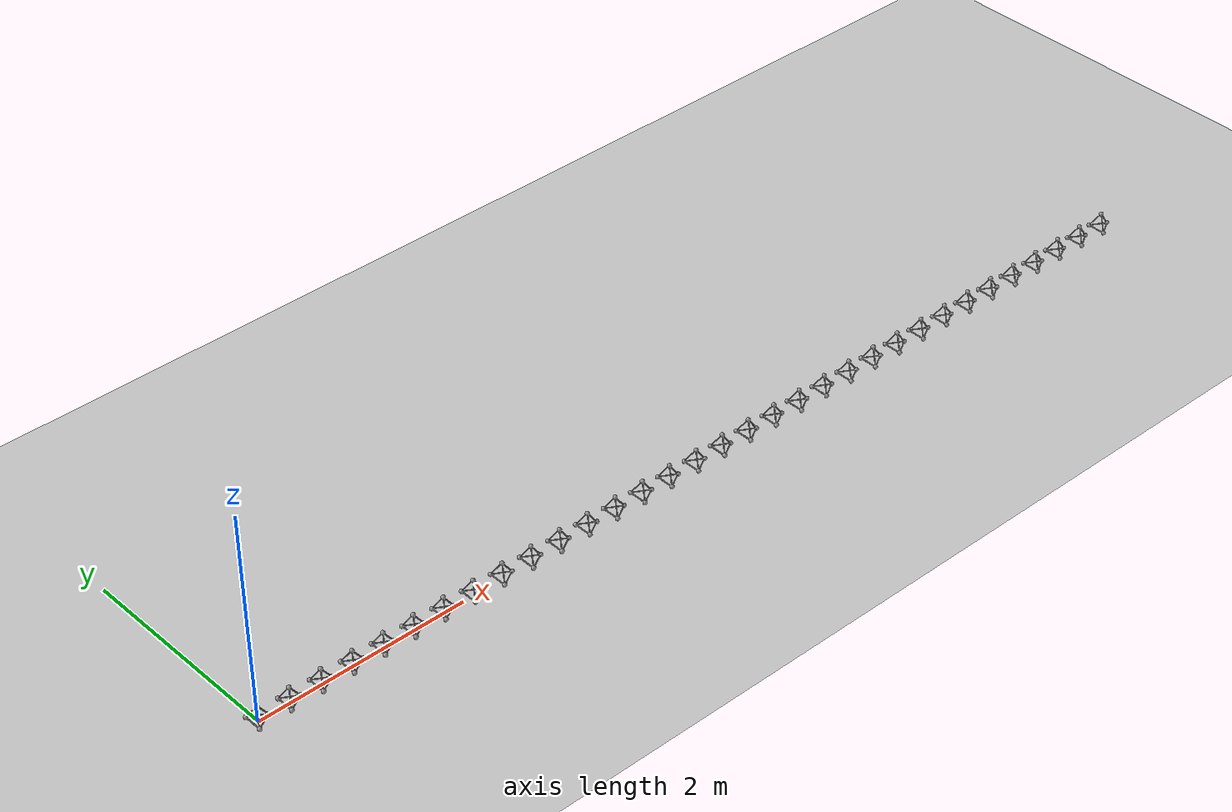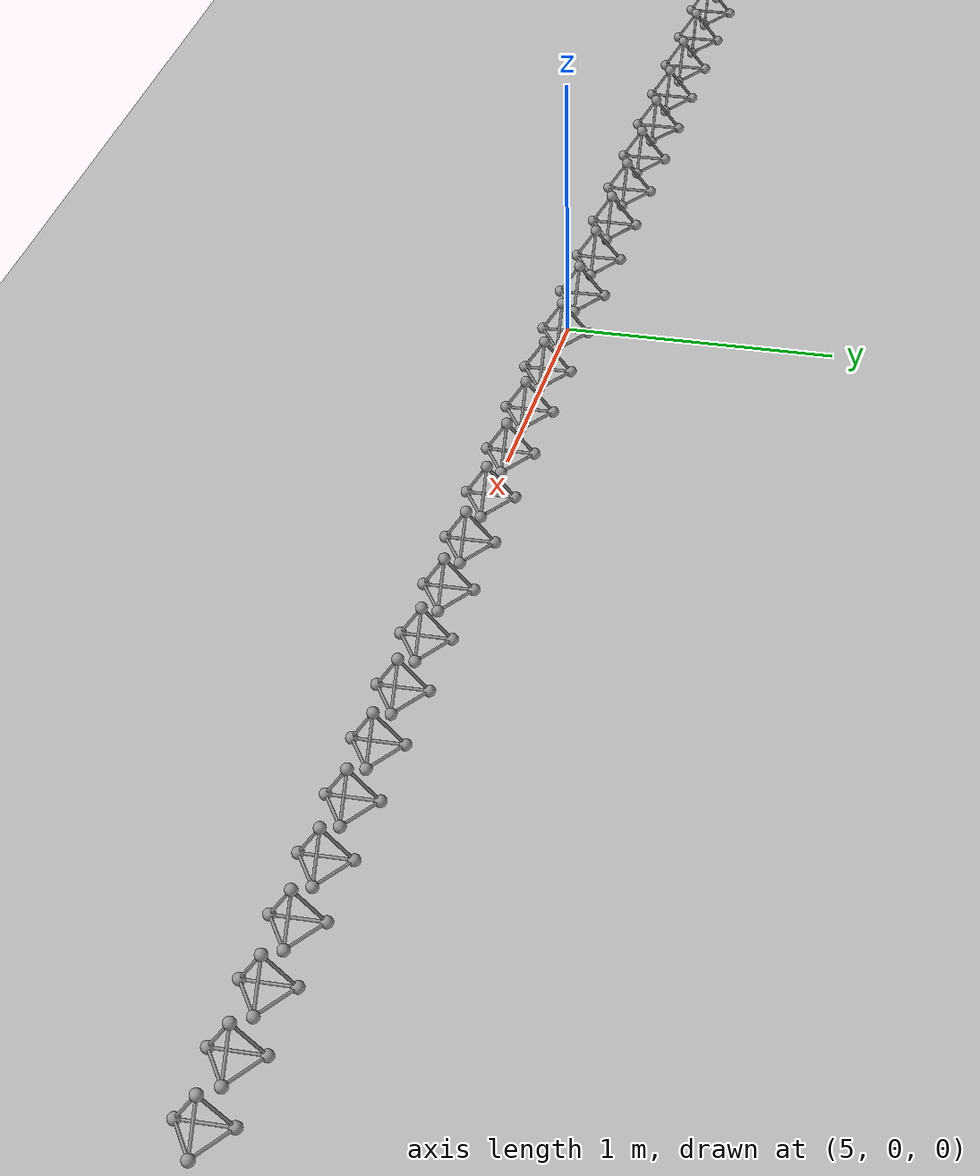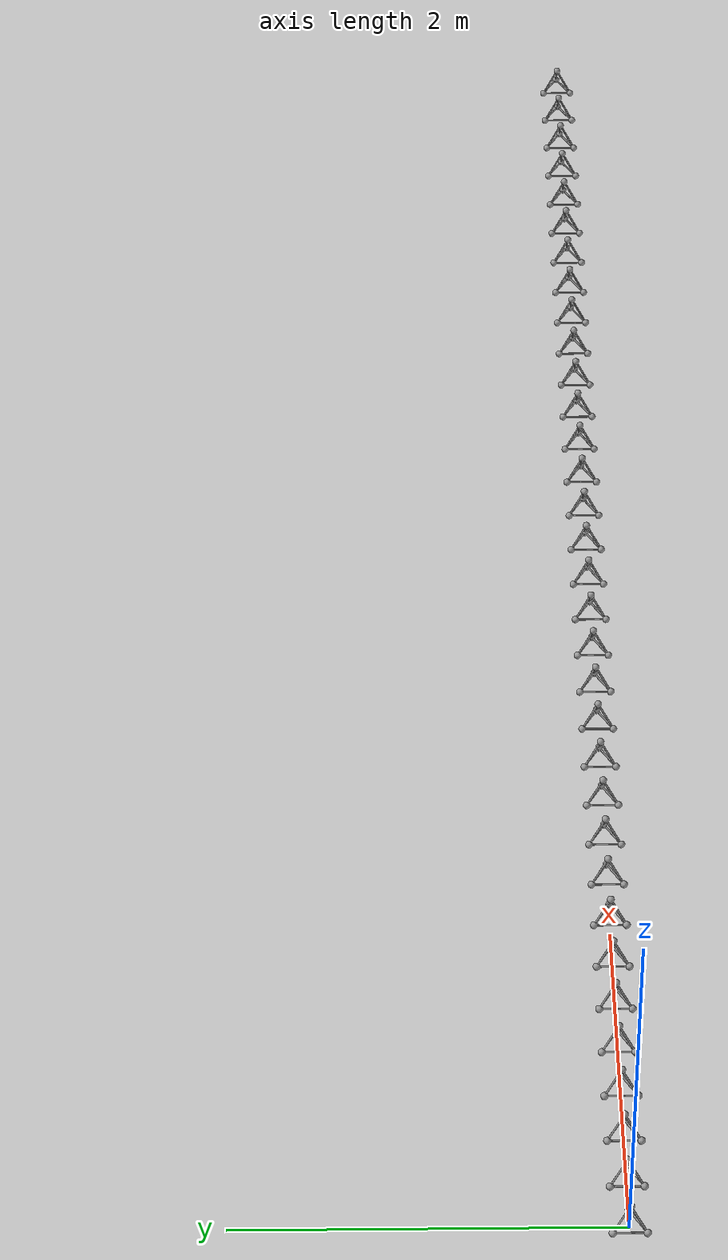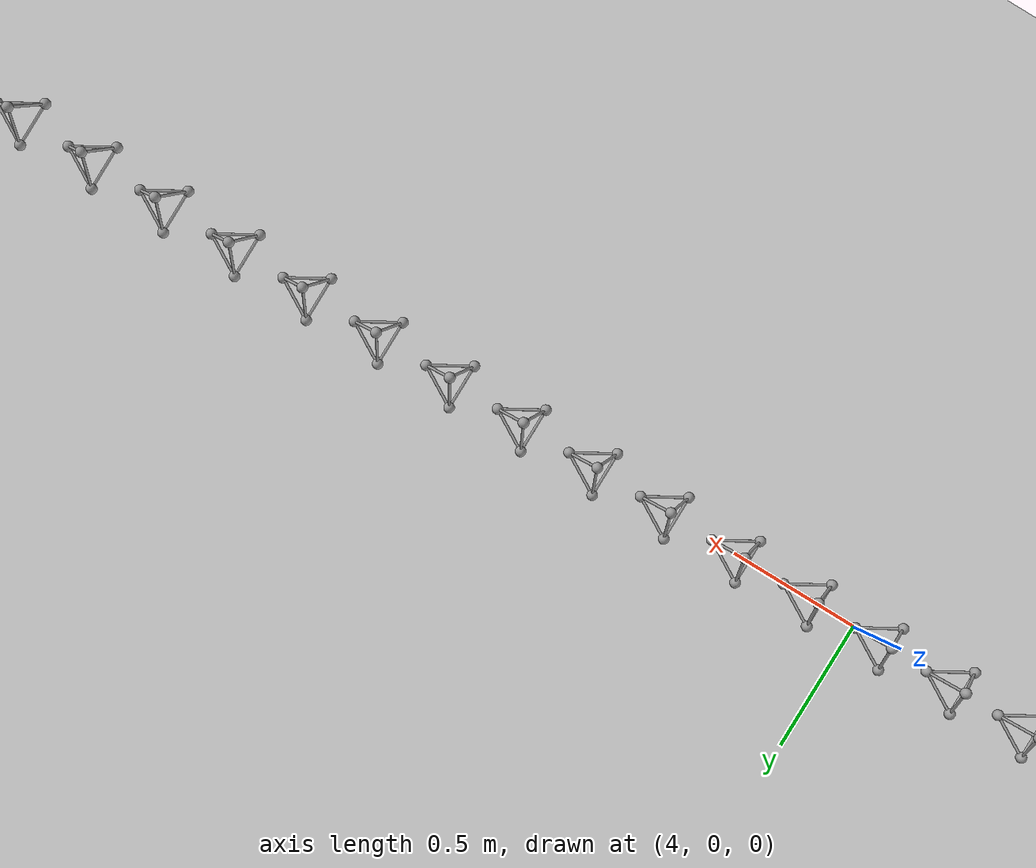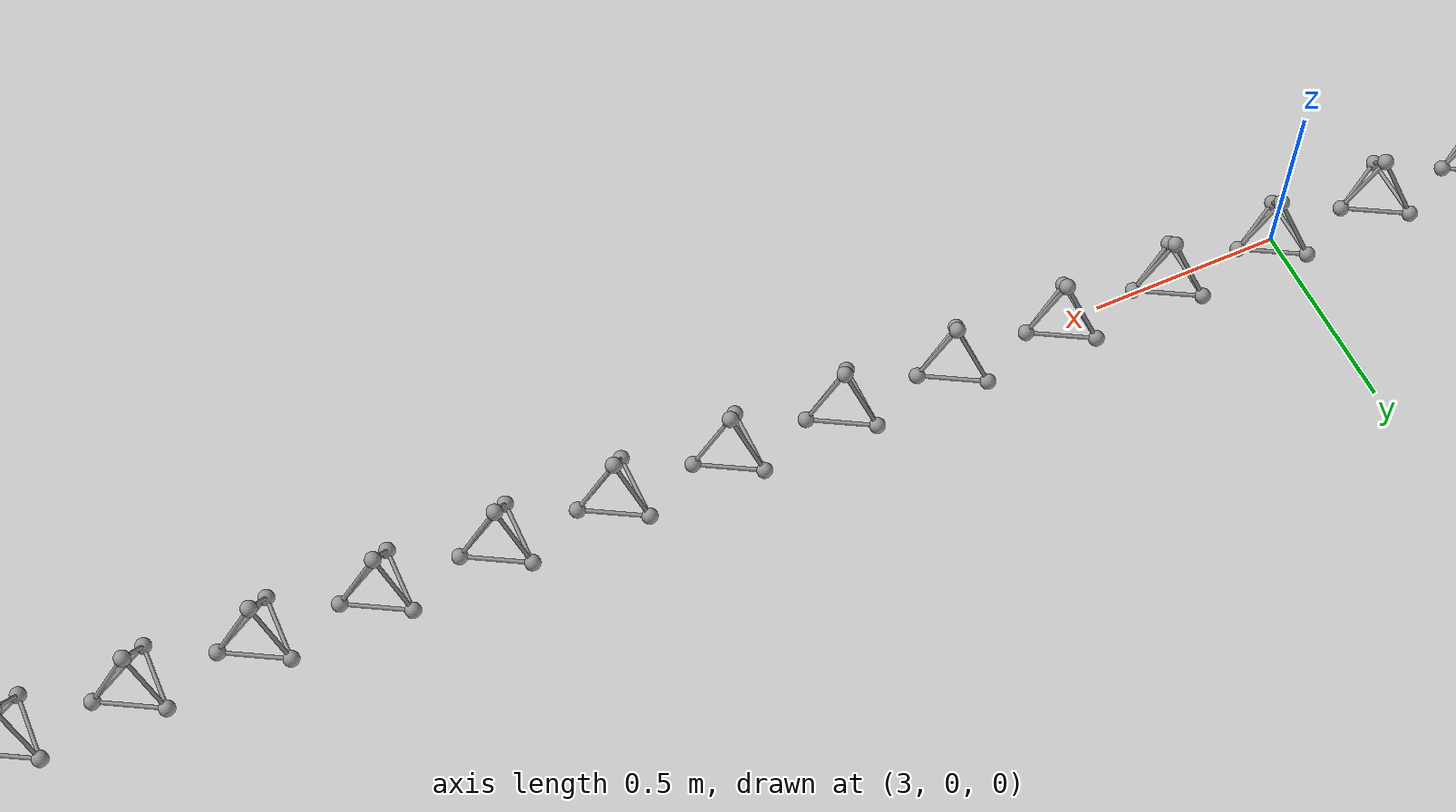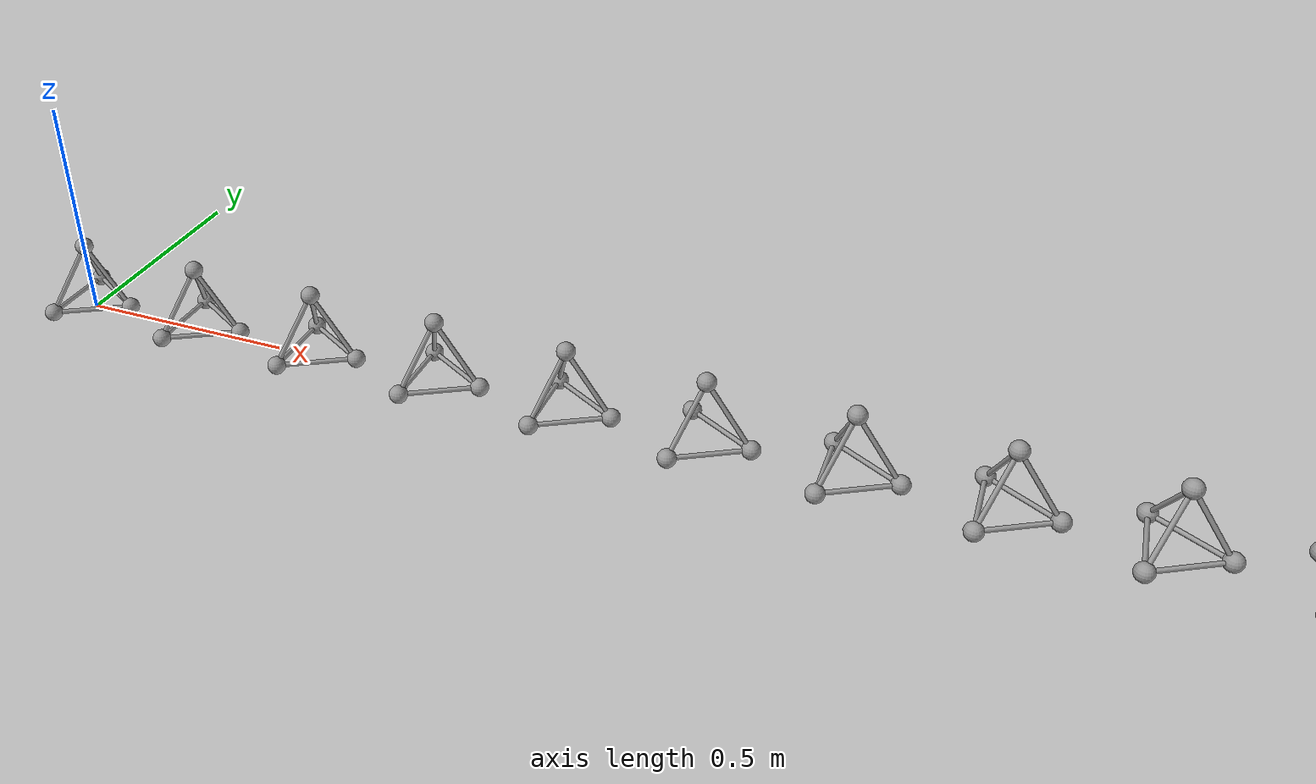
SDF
<?xml version="1.0" ?>

<sdf version="1.5">
  <world name="default">
    <include>
      <uri>model://ground_plane</uri>
    </include>
    <include>
      <uri>model://sun</uri>
    </include>

    <model name="tetraball_0">
      <include>
        <uri>model://tetraball</uri>
        <pose>0.0 0 0  0 0 0</pose>
      </include>
      <plugin name="tetraball_0" filename="libInitialVelocityPlugin.so">
        <linear>0 15 0</linear>
        <angular>0 0 -150.0</angular>
      </plugin>
    </model>

    <model name="tetraball_1">
      <include>
        <uri>model://tetraball</uri>
        <pose>0.3 0 0  0 0 0</pose>
      </include>
      <plugin name="tetraball_1" filename="libInitialVelocityPlugin.so">
        <linear>0 15 0</linear>
        <angular>0 0 -140.625</angular>
      </plugin>
    </model>

    <model name="tetraball_2">
      <include>
        <uri>model://tetraball</uri>
        <pose>0.6 0 0  0 0 0</pose>
      </include>
      <plugin name="tetraball_2" filename="libInitialVelocityPlugin.so">
        <linear>0 15 0</linear>
        <angular>0 0 -131.25</angular>
      </plugin>
    </model>

    <model name="tetraball_3">
      <include>
        <uri>model://tetraball</uri>
        <pose>0.8999999999999999 0 0  0 0 0</pose>
      </include>
      <plugin name="tetraball_3" filename="libInitialVelocityPlugin.so">
        <linear>0 15 0</linear>
        <angular>0 0 -121.875</angular>
      </plugin>
    </model>

    <model name="tetraball_4">
      <include>
        <uri>model://tetraball</uri>
        <pose>1.2 0 0  0 0 0</pose>
      </include>
      <plugin name="tetraball_4" filename="libInitialVelocityPlugin.so">
        <linear>0 15 0</linear>
        <angular>0 0 -112.5</angular>
      </plugin>
    </model>

    <model name="tetraball_5">
      <include>
        <uri>model://tetraball</uri>
        <pose>1.5 0 0  0 0 0</pose>
      </include>
      <plugin name="tetraball_5" filename="libInitialVelocityPlugin.so">
        <linear>0 15 0</linear>
        <angular>0 0 -103.125</angular>
      </plugin>
    </model>

    <model name="tetraball_6">
      <include>
        <uri>model://tetraball</uri>
        <pose>1.7999999999999998 0 0  0 0 0</pose>
      </include>
      <plugin name="tetraball_6" filename="libInitialVelocityPlugin.so">
        <linear>0 15 0</linear>
        <angular>0 0 -93.75</angular>
      </plugin>
    </model>

    <model name="tetraball_7">
      <include>
        <uri>model://tetraball</uri>
        <pose>2.1 0 0  0 0 0</pose>
      </include>
      <plugin name="tetraball_7" filename="libInitialVelocityPlugin.so">
        <linear>0 15 0</linear>
        <angular>0 0 -84.375</angular>
      </plugin>
    </model>

    <model name="tetraball_8">
      <include>
        <uri>model://tetraball</uri>
        <pose>2.4 0 0  0 0 0</pose>
      </include>
      <plugin name="tetraball_8" filename="libInitialVelocityPlugin.so">
        <linear>0 15 0</linear>
        <angular>0 0 -75.0</angular>
      </plugin>
    </model>

    <model name="tetraball_9">
      <include>
        <uri>model://tetraball</uri>
        <pose>2.6999999999999997 0 0  0 0 0</pose>
      </include>
      <plugin name="tetraball_9" filename="libInitialVelocityPlugin.so">
        <linear>0 15 0</linear>
        <angular>0 0 -65.625</angular>
      </plugin>
    </model>

    <model name="tetraball_10">
      <include>
        <uri>model://tetraball</uri>
        <pose>3.0 0 0  0 0 0</pose>
      </include>
      <plugin name="tetraball_10" filename="libInitialVelocityPlugin.so">
        <linear>0 15 0</linear>
        <angular>0 0 -56.25</angular>
      </plugin>
    </model>

    <model name="tetraball_11">
      <include>
        <uri>model://tetraball</uri>
        <pose>3.3 0 0  0 0 0</pose>
      </include>
      <plugin name="tetraball_11" filename="libInitialVelocityPlugin.so">
        <linear>0 15 0</linear>
        <angular>0 0 -46.875</angular>
      </plugin>
    </model>

    <model name="tetraball_12">
      <include>
        <uri>model://tetraball</uri>
        <pose>3.5999999999999996 0 0  0 0 0</pose>
      </include>
      <plugin name="tetraball_12" filename="libInitialVelocityPlugin.so">
        <linear>0 15 0</linear>
        <angular>0 0 -37.5</angular>
      </plugin>
    </model>

    <model name="tetraball_13">
      <include>
        <uri>model://tetraball</uri>
        <pose>3.9 0 0  0 0 0</pose>
      </include>
      <plugin name="tetraball_13" filename="libInitialVelocityPlugin.so">
        <linear>0 15 0</linear>
        <angular>0 0 -28.125</angular>
      </plugin>
    </model>

    <model name="tetraball_14">
      <include>
        <uri>model://tetraball</uri>
        <pose>4.2 0 0  0 0 0</pose>
      </include>
      <plugin name="tetraball_14" filename="libInitialVelocityPlugin.so">
        <linear>0 15 0</linear>
        <angular>0 0 -18.75</angular>
      </plugin>
    </model>

    <model name="tetraball_15">
      <include>
        <uri>model://tetraball</uri>
        <pose>4.5 0 0  0 0 0</pose>
      </include>
      <plugin name="tetraball_15" filename="libInitialVelocityPlugin.so">
        <linear>0 15 0</linear>
        <angular>0 0 -9.375</angular>
      </plugin>
    </model>

    <model name="tetraball_16">
      <include>
        <uri>model://tetraball</uri>
        <pose>4.8 0 0  0 0 0</pose>
      </include>
      <plugin name="tetraball_16" filename="libInitialVelocityPlugin.so">
        <linear>0 15 0</linear>
        <angular>0 0 0.0</angular>
      </plugin>
    </model>

    <model name="tetraball_17">
      <include>
        <uri>model://tetraball</uri>
        <pose>5.1 0 0  0 0 0</pose>
      </include>
      <plugin name="tetraball_17" filename="libInitialVelocityPlugin.so">
        <linear>0 15 0</linear>
        <angular>0 0 9.375</angular>
      </plugin>
    </model>

    <model name="tetraball_18">
      <include>
        <uri>model://tetraball</uri>
        <pose>5.3999999999999995 0 0  0 0 0</pose>
      </include>
      <plugin name="tetraball_18" filename="libInitialVelocityPlugin.so">
        <linear>0 15 0</linear>
        <angular>0 0 18.75</angular>
      </plugin>
    </model>

    <model name="tetraball_19">
      <include>
        <uri>model://tetraball</uri>
        <pose>5.7 0 0  0 0 0</pose>
      </include>
      <plugin name="tetraball_19" filename="libInitialVelocityPlugin.so">
        <linear>0 15 0</linear>
        <angular>0 0 28.125</angular>
      </plugin>
    </model>

    <model name="tetraball_20">
      <include>
        <uri>model://tetraball</uri>
        <pose>6.0 0 0  0 0 0</pose>
      </include>
      <plugin name="tetraball_20" filename="libInitialVelocityPlugin.so">
        <linear>0 15 0</linear>
        <angular>0 0 37.5</angular>
      </plugin>
    </model>

    <model name="tetraball_21">
      <include>
        <uri>model://tetraball</uri>
        <pose>6.3 0 0  0 0 0</pose>
      </include>
      <plugin name="tetraball_21" filename="libInitialVelocityPlugin.so">
        <linear>0 15 0</linear>
        <angular>0 0 46.875</angular>
      </plugin>
    </model>

    <model name="tetraball_22">
      <include>
        <uri>model://tetraball</uri>
        <pose>6.6 0 0  0 0 0</pose>
      </include>
      <plugin name="tetraball_22" filename="libInitialVelocityPlugin.so">
        <linear>0 15 0</linear>
        <angular>0 0 56.25</angular>
      </plugin>
    </model>

    <model name="tetraball_23">
      <include>
        <uri>model://tetraball</uri>
        <pose>6.8999999999999995 0 0  0 0 0</pose>
      </include>
      <plugin name="tetraball_23" filename="libInitialVelocityPlugin.so">
        <linear>0 15 0</linear>
        <angular>0 0 65.625</angular>
      </plugin>
    </model>

    <model name="tetraball_24">
      <include>
        <uri>model://tetraball</uri>
        <pose>7.199999999999999 0 0  0 0 0</pose>
      </include>
      <plugin name="tetraball_24" filename="libInitialVelocityPlugin.so">
        <linear>0 15 0</linear>
        <angular>0 0 75.0</angular>
      </plugin>
    </model>

    <model name="tetraball_25">
      <include>
        <uri>model://tetraball</uri>
        <pose>7.5 0 0  0 0 0</pose>
      </include>
      <plugin name="tetraball_25" filename="libInitialVelocityPlugin.so">
        <linear>0 15 0</linear>
        <angular>0 0 84.375</angular>
      </plugin>
    </model>

    <model name="tetraball_26">
      <include>
        <uri>model://tetraball</uri>
        <pose>7.8 0 0  0 0 0</pose>
      </include>
      <plugin name="tetraball_26" filename="libInitialVelocityPlugin.so">
        <linear>0 15 0</linear>
        <angular>0 0 93.75</angular>
      </plugin>
    </model>

    <model name="tetraball_27">
      <include>
        <uri>model://tetraball</uri>
        <pose>8.1 0 0  0 0 0</pose>
      </include>
      <plugin name="tetraball_27" filename="libInitialVelocityPlugin.so">
        <linear>0 15 0</linear>
        <angular>0 0 103.125</angular>
      </plugin>
    </model>

    <model name="tetraball_28">
      <include>
        <uri>model://tetraball</uri>
        <pose>8.4 0 0  0 0 0</pose>
      </include>
      <plugin name="tetraball_28" filename="libInitialVelocityPlugin.so">
        <linear>0 15 0</linear>
        <angular>0 0 112.5</angular>
      </plugin>
    </model>

    <model name="tetraball_29">
      <include>
        <uri>model://tetraball</uri>
        <pose>8.7 0 0  0 0 0</pose>
      </include>
      <plugin name="tetraball_29" filename="libInitialVelocityPlugin.so">
        <linear>0 15 0</linear>
        <angular>0 0 121.875</angular>
      </plugin>
    </model>

    <model name="tetraball_30">
      <include>
        <uri>model://tetraball</uri>
        <pose>9.0 0 0  0 0 0</pose>
      </include>
      <plugin name="tetraball_30" filename="libInitialVelocityPlugin.so">
        <linear>0 15 0</linear>
        <angular>0 0 131.25</angular>
      </plugin>
    </model>

    <model name="tetraball_31">
      <include>
        <uri>model://tetraball</uri>
        <pose>9.299999999999999 0 0  0 0 0</pose>
      </include>
      <plugin name="tetraball_31" filename="libInitialVelocityPlugin.so">
        <linear>0 15 0</linear>
        <angular>0 0 140.625</angular>
      </plugin>
    </model>

    <model name="tetraball_32">
      <include>
        <uri>model://tetraball</uri>
        <pose>9.6 0 0  0 0 0</pose>
      </include>
      <plugin name="tetraball_32" filename="libInitialVelocityPlugin.so">
        <linear>0 15 0</linear>
        <angular>0 0 150.0</angular>
      </plugin>
    </model>

    <gui fullscreen='0'>
      <camera name='user_camera'>
        <pose>8.5 5.5 0.3  0 0 3.14159</pose>
        <view_controller>orbit</view_controller>
      </camera>
    </gui>
  </world>
</sdf>

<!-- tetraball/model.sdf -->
<sdf version="1.5">
  <model name="tetraball">
    <link name="link">
      <pose>0 0 0.02  0 0 0</pose>
      <inertial>
        <pose>0.0 0.0 0.03535533905932737  0 0 0</pose>
        <mass>0.08042477193189872</mass>
        <inertia>
          <ixx>0.0006160537529983441</ixx>
          <iyy>0.000616053752998344</iyy>
          <izz>0.0006160537529983441</izz>
          <ixy>0.0</ixy>
          <ixz>0.0</ixz>
          <iyz>0.0</iyz>
        </inertia>
      </inertial>

      <collision name="collision_a">
        <pose>0.09999999999999999 0 0  0 0 0</pose>
        <geometry>
          <sphere>
            <radius>0.02</radius>
          </sphere>
        </geometry>
        <surface>
          <friction>
            <ode>
              <mu>0.9</mu>
              <mu2>0.9</mu2>
            </ode>
          </friction>
        </surface>
      </collision>
      <visual name="visual_a">
        <pose>0.09999999999999999 0 0  0 0 0</pose>
        <geometry>
          <sphere>
            <radius>0.02</radius>
          </sphere>
        </geometry>
        <material>
          <script>
            <uri>file://media/materials/scripts/gazebo.material</uri>
            <name>Gazebo/Grey</name>
          </script>
        </material>
      </visual>

      <collision name="collision_a_to_b">
        <pose>0.024999999999999998 0.04330127018922193 0.0  -1.5707962969925737 -1.0471975511965974 1.047197525387029</pose>
        <geometry>
          <cylinder>
            <radius>0.005</radius>
            <length>0.17320508075688773</length>
          </cylinder>
        </geometry>
        <surface>
          <friction>
            <ode>
              <mu>0.9</mu>
              <mu2>0.9</mu2>
            </ode>
          </friction>
        </surface>
      </collision>
      <visual name="visual_a_to_b">
        <pose>0.024999999999999998 0.04330127018922193 0.0  -1.5707962969925737 -1.0471975511965974 1.047197525387029</pose>
        <geometry>
          <cylinder>
            <radius>0.005</radius>
            <length>0.17320508075688773</length>
          </cylinder>
        </geometry>
        <material>
          <script>
            <uri>file://media/materials/scripts/gazebo.material</uri>
            <name>Gazebo/Grey</name>
          </script>
        </material>
      </visual>

      <collision name="collision_a_to_c">
        <pose>0.024999999999999998 -0.04330127018922193 0.0  1.5707962969925737 -1.0471975511965974 -1.047197525387029</pose>
        <geometry>
          <cylinder>
            <radius>0.005</radius>
            <length>0.17320508075688773</length>
          </cylinder>
        </geometry>
        <surface>
          <friction>
            <ode>
              <mu>0.9</mu>
              <mu2>0.9</mu2>
            </ode>
          </friction>
        </surface>
      </collision>
      <visual name="visual_a_to_c">
        <pose>0.024999999999999998 -0.04330127018922193 0.0  1.5707962969925737 -1.0471975511965974 -1.047197525387029</pose>
        <geometry>
          <cylinder>
            <radius>0.005</radius>
            <length>0.17320508075688773</length>
          </cylinder>
        </geometry>
        <material>
          <script>
            <uri>file://media/materials/scripts/gazebo.material</uri>
            <name>Gazebo/Grey</name>
          </script>
        </material>
      </visual>

      <collision name="collision_a_to_d">
        <pose>0.049999999999999996 0.0 0.07071067811865474  0.0 -0.6154797086703877 0.0</pose>
        <geometry>
          <cylinder>
            <radius>0.005</radius>
            <length>0.1732050807568877</length>
          </cylinder>
        </geometry>
        <surface>
          <friction>
            <ode>
              <mu>0.9</mu>
              <mu2>0.9</mu2>
            </ode>
          </friction>
        </surface>
      </collision>
      <visual name="visual_a_to_d">
        <pose>0.049999999999999996 0.0 0.07071067811865474  0.0 -0.6154797086703877 0.0</pose>
        <geometry>
          <cylinder>
            <radius>0.005</radius>
            <length>0.1732050807568877</length>
          </cylinder>
        </geometry>
        <material>
          <script>
            <uri>file://media/materials/scripts/gazebo.material</uri>
            <name>Gazebo/Grey</name>
          </script>
        </material>
      </visual>

      <collision name="collision_b">
        <pose>-0.049999999999999996 0.08660254037844387 0  0 0 0</pose>
        <geometry>
          <sphere>
            <radius>0.02</radius>
          </sphere>
        </geometry>
        <surface>
          <friction>
            <ode>
              <mu>0.9</mu>
              <mu2>0.9</mu2>
            </ode>
          </friction>
        </surface>
      </collision>
      <visual name="visual_b">
        <pose>-0.049999999999999996 0.08660254037844387 0  0 0 0</pose>
        <geometry>
          <sphere>
            <radius>0.02</radius>
          </sphere>
        </geometry>
        <material>
          <script>
            <uri>file://media/materials/scripts/gazebo.material</uri>
            <name>Gazebo/Grey</name>
          </script>
        </material>
      </visual>

      <collision name="collision_b_to_c">
        <pose>-0.049999999999999996 0.0 0.0  1.5707963267948963 -0.0 0.0</pose>
        <geometry>
          <cylinder>
            <radius>0.005</radius>
            <length>0.17320508075688773</length>
          </cylinder>
        </geometry>
        <surface>
          <friction>
            <ode>
              <mu>0.9</mu>
              <mu2>0.9</mu2>
            </ode>
          </friction>
        </surface>
      </collision>
      <visual name="visual_b_to_c">
        <pose>-0.049999999999999996 0.0 0.0  1.5707963267948963 -0.0 0.0</pose>
        <geometry>
          <cylinder>
            <radius>0.005</radius>
            <length>0.17320508075688773</length>
          </cylinder>
        </geometry>
        <material>
          <script>
            <uri>file://media/materials/scripts/gazebo.material</uri>
            <name>Gazebo/Grey</name>
          </script>
        </material>
      </visual>

      <collision name="collision_b_to_d">
        <pose>-0.024999999999999998 0.04330127018922193 0.07071067811865474  0.5494672447576275 0.29284277172857565 0.08308811259360045</pose>
        <geometry>
          <cylinder>
            <radius>0.005</radius>
            <length>0.1732050807568877</length>
          </cylinder>
        </geometry>
        <surface>
          <friction>
            <ode>
              <mu>0.9</mu>
              <mu2>0.9</mu2>
            </ode>
          </friction>
        </surface>
      </collision>
      <visual name="visual_b_to_d">
        <pose>-0.024999999999999998 0.04330127018922193 0.07071067811865474  0.5494672447576275 0.29284277172857565 0.08308811259360045</pose>
        <geometry>
          <cylinder>
            <radius>0.005</radius>
            <length>0.1732050807568877</length>
          </cylinder>
        </geometry>
        <material>
          <script>
            <uri>file://media/materials/scripts/gazebo.material</uri>
            <name>Gazebo/Grey</name>
          </script>
        </material>
      </visual>

      <collision name="collision_c">
        <pose>-0.049999999999999996 -0.08660254037844387 0  0 0 0</pose>
        <geometry>
          <sphere>
            <radius>0.02</radius>
          </sphere>
        </geometry>
        <surface>
          <friction>
            <ode>
              <mu>0.9</mu>
              <mu2>0.9</mu2>
            </ode>
          </friction>
        </surface>
      </collision>
      <visual name="visual_c">
        <pose>-0.049999999999999996 -0.08660254037844387 0  0 0 0</pose>
        <geometry>
          <sphere>
            <radius>0.02</radius>
          </sphere>
        </geometry>
        <material>
          <script>
            <uri>file://media/materials/scripts/gazebo.material</uri>
            <name>Gazebo/Grey</name>
          </script>
        </material>
      </visual>

      <collision name="collision_c_to_d">
        <pose>-0.024999999999999998 -0.04330127018922193 0.07071067811865474  -0.5494672447576275 0.29284277172857565 -0.08308811259360045</pose>
        <geometry>
          <cylinder>
            <radius>0.005</radius>
            <length>0.1732050807568877</length>
          </cylinder>
        </geometry>
        <surface>
          <friction>
            <ode>
              <mu>0.9</mu>
              <mu2>0.9</mu2>
            </ode>
          </friction>
        </surface>
      </collision>
      <visual name="visual_c_to_d">
        <pose>-0.024999999999999998 -0.04330127018922193 0.07071067811865474  -0.5494672447576275 0.29284277172857565 -0.08308811259360045</pose>
        <geometry>
          <cylinder>
            <radius>0.005</radius>
            <length>0.1732050807568877</length>
          </cylinder>
        </geometry>
        <material>
          <script>
            <uri>file://media/materials/scripts/gazebo.material</uri>
            <name>Gazebo/Grey</name>
          </script>
        </material>
      </visual>

      <collision name="collision_d">
        <pose>0 0 0.14142135623730948  0 0 0</pose>
        <geometry>
          <sphere>
            <radius>0.02</radius>
          </sphere>
        </geometry>
        <surface>
          <friction>
            <ode>
              <mu>0.9</mu>
              <mu2>0.9</mu2>
            </ode>
          </friction>
        </surface>
      </collision>
      <visual name="visual_d">
        <pose>0 0 0.14142135623730948  0 0 0</pose>
        <geometry>
          <sphere>
            <radius>0.02</radius>
          </sphere>
        </geometry>
        <material>
          <script>
            <uri>file://media/materials/scripts/gazebo.material</uri>
            <name>Gazebo/Grey</name>
          </script>
        </material>
      </visual>

    </link>
  </model>
</sdf>
